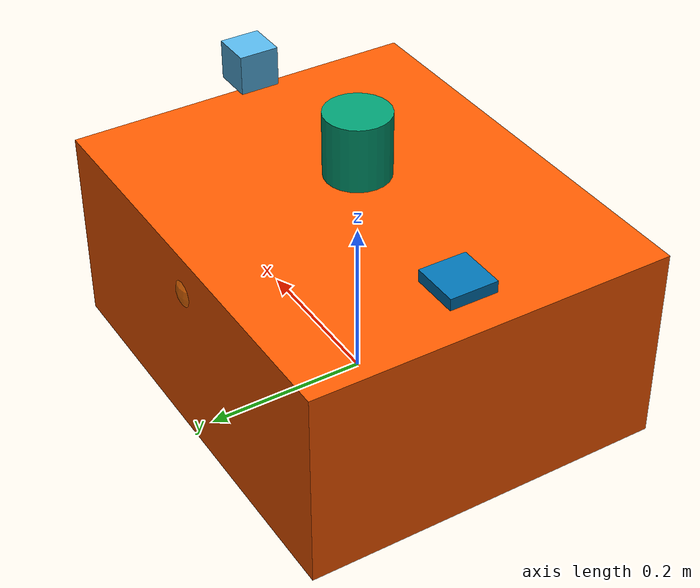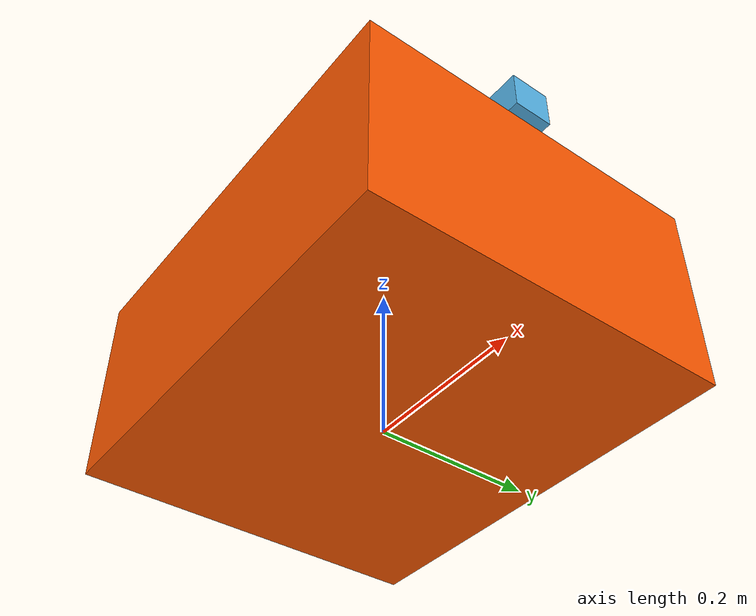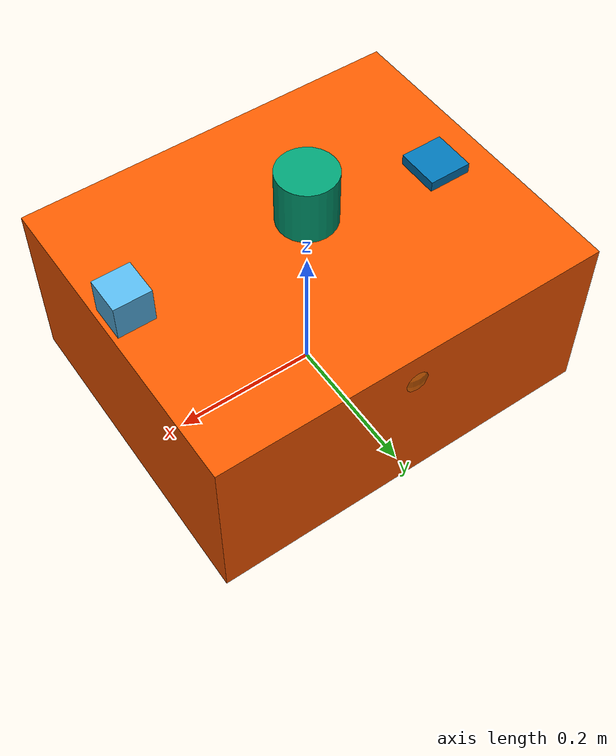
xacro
<?xml version="1.0"?>

<robot xmlns:xacro="http://ros.org/wiki/xacro" name="hmmr">

    <!-- Base dimensions -->
    <xacro:property name="base_length" value="0.55"/>
    <xacro:property name="base_width" value="0.45"/>
    <xacro:property name="base_height" value="0.25"/>

    <!-- Main chassis -->
    <link name="base_link">

        <visual>
            <geometry>
                <box size="${base_length} ${base_width} ${base_height}"/>
            </geometry>

            <origin xyz="0 0 0.125"/>

            <material name="body">
                <color rgba="1.0 0.35 0.0 1.0"/>
            </material>
        </visual>

        <collision>
            <geometry>
                <box size="${base_length} ${base_width} ${base_height}"/>
            </geometry>

            <origin xyz="0 0 0.125"/>
        </collision>

        <inertial>
            <mass value="10"/>
            <origin xyz="0 0 0.125"/>
            <inertia
                ixx="0.1"
                ixy="0"
                ixz="0"
                iyy="0.1"
                iyz="0"
                izz="0.1"/>
        </inertial>

    </link>

    <!-- Camera mount -->
    <link name="camera_link">

        <visual>
            <geometry>
                <box size="0.05 0.05 0.05"/>
            </geometry>

            <origin xyz="0 0 0"/>
        </visual>

    </link>

    <joint name="camera_joint" type="fixed">

        <parent link="base_link"/>
        <child link="camera_link"/>

        <origin xyz="0.25 0 0.30"/>

    </joint>

    <!-- LiDAR Sensor -->
    <link name="lidar_link">

        <visual>
            <geometry>
                <cylinder radius="0.04" length="0.08"/>
            </geometry>

            <origin xyz="0 0 0"/>

        </visual>

    </link>

    <joint name="lidar_joint" type="fixed">

        <parent link="base_link"/>

        <child link="lidar_link"/>

        <origin xyz="0 0 0.32"/>

    </joint>

    <!-- IMU Sensor -->
    <link name="imu_link">

        <visual>

            <geometry>
                <box size="0.04 0.04 0.02"/>
            </geometry>

            <origin xyz="0 0 0"/>

        </visual>

    </link>

    <joint name="imu_joint" type="fixed">

        <parent link="base_link"/>

        <child link="imu_link"/>

        <origin xyz="0 0 0.15"/>

    </joint>

    <!-- Thermal Camera -->
    <link name="thermal_camera_link">

        <visual>

            <geometry>
                <box size="0.06 0.06 0.03"/>
            </geometry>

            <origin xyz="0 0 0"/>

        </visual>

    </link>

    <joint name="thermal_camera_joint" type="fixed">

        <parent link="base_link"/>

        <child link="thermal_camera_link"/>

        <origin xyz="-0.20 0 0.25"/>

    </joint>

    <!-- Environmental Sensor -->
    <link name="environment_sensor_link">

        <visual>

            <geometry>
                <sphere radius="0.03"/>
            </geometry>

        </visual>

    </link>

    <joint name="environment_sensor_joint" type="fixed">

        <parent link="base_link"/>

        <child link="environment_sensor_link"/>

        <origin xyz="0 0.20 0.20"/>

    </joint>

</robot>
